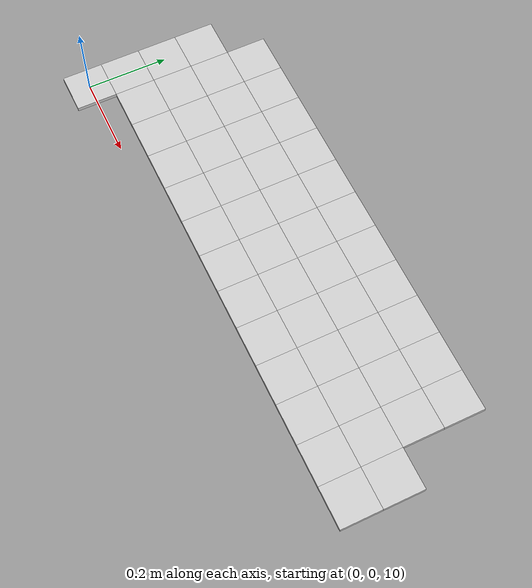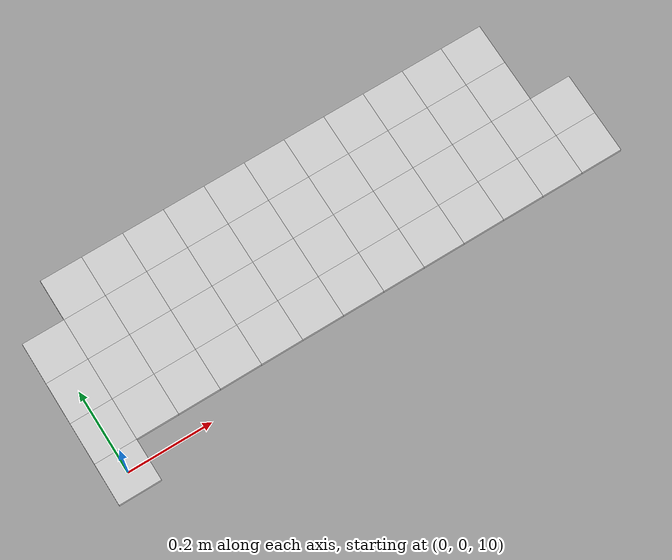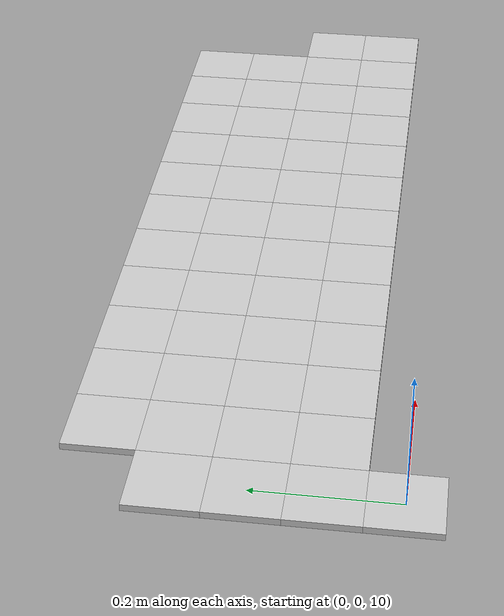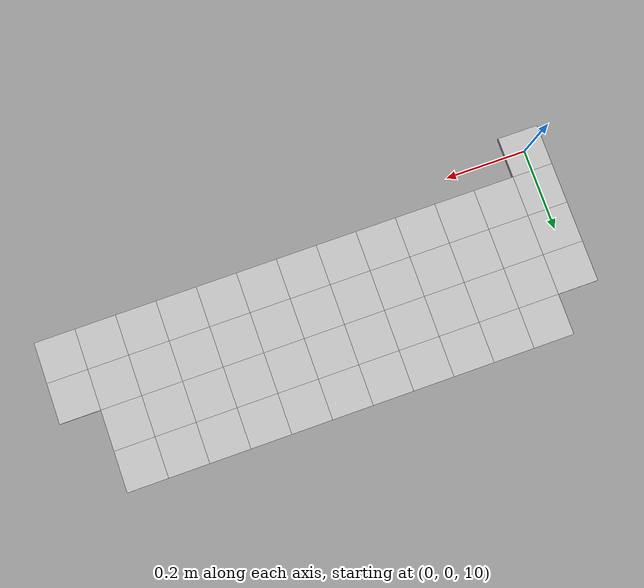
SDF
<?xml version="1.0" ?>
<sdf version="1.6">
  <world name="blanket_physics">

      <physics name="1ms" type="ignored">
        <max_step_size>0.01</max_step_size>
        <real_time_factor>1.0</real_time_factor>
        </physics>
        <plugin
          filename="ignition-gazebo-physics-system"
          name="ignition::gazebo::systems::Physics">
        </plugin>
        <plugin
          filename="ignition-gazebo-user-commands-system"
          name="ignition::gazebo::systems::UserCommands">
        </plugin>

    <plugin
      filename="libignition-gazebo-physics-system.so"
      name="ignition::gazebo::systems::Physics">
    </plugin>
    <plugin
      filename="libignition-gazebo-user-commands-system.so"
      name="ignition::gazebo::systems::UserCommands">
    </plugin>

    <plugin
      filename="libignition-gazebo-scene-broadcaster-system.so"
      name="ignition::gazebo::systems::SceneBroadcaster">
    </plugin>
            <gui fullscreen="0">

            <!-- 3D scene -->
            <plugin filename="GzScene3D" name="3D View">
                <ignition-gui>
                <title>3D View</title>
                <property type="bool" key="showTitleBar">false</property>
                <property type="string" key="state">docked</property>
                </ignition-gui>

                <engine>ogre2</engine>
                <scene>scene</scene>
                <ambient_light>0.4 0.4 0.4</ambient_light>
                <background_color>0.8 0.8 0.8</background_color>
            </plugin>

      <!-- World control -->
      <plugin filename="WorldControl" name="World control">
        <ignition-gui>
          <title>World control</title>
          <property type="bool" key="showTitleBar">false</property>
          <property type="bool" key="resizable">false</property>
          <property type="double" key="height">72</property>
          <property type="double" key="width">121</property>
          <property type="double" key="z">1</property>

          <property type="string" key="state">floating</property>
          <anchors target="3D View">
            <line own="left" target="left"/>
            <line own="bottom" target="bottom"/>
          </anchors>
        </ignition-gui>

        <play_pause>true</play_pause>
        <step>true</step>
        <start_paused>false</start_paused>
        <service>/world/shapes/control</service>
        <stats_topic>/world/shapes/stats</stats_topic>

      </plugin>

      <!-- World statistics -->
      <plugin filename="WorldStats" name="World stats">
        <ignition-gui>
          <title>World stats</title>
          <property type="bool" key="showTitleBar">false</property>
          <property type="bool" key="resizable">false</property>
          <property type="double" key="height">110</property>
          <property type="double" key="width">290</property>
          <property type="double" key="z">1</property>

          <property type="string" key="state">floating</property>
          <anchors target="3D View">
            <line own="right" target="right"/>
            <line own="bottom" target="bottom"/>
          </anchors>
        </ignition-gui>

        <sim_time>true</sim_time>
        <real_time>true</real_time>
        <real_time_factor>true</real_time_factor>
        <iterations>true</iterations>
        <topic>/world/shapes/stats</topic>
      </plugin>

                            <!-- Entity tree -->
            <plugin filename="EntityTree" name="Entity tree">
            </plugin>
    </gui>

    <light type="directional" name="sun">
      <cast_shadows>true</cast_shadows>
      <pose>0 0 10 0 0 0</pose>
      <diffuse>1.0 1.0 1.0 1</diffuse>
      <specular>0.2 0.2 0.2 1</specular>
      <attenuation>
        <range>1000</range>
        <constant>0.1</constant>
        <linear>0.001</linear>
        <quadratic>0.0001</quadratic>
      </attenuation>
      <direction>-0.5 0.1 -0.9</direction>
    </light>

      <model name="ground_plane">
            <static>true</static>
            <link name="link">
                <collision name="collision">
                <geometry>
                    <plane>
                    <normal>0 0 1</normal>
                    </plane>
                </geometry>
                </collision>
                <visual name="visual">
                <geometry>
                    <plane>
                    <normal>0 0 1</normal>
                    <size>100 100</size>
                    </plane>
                </geometry>
                <material>
                    <ambient>0.8 0.8 0.8 1</ambient>
                    <diffuse>0.8 0.8 0.8 1</diffuse>
                    <specular>0.8 0.8 0.8 1</specular>
                </material>
                </visual>
            </link>
      </model>

		<include>
		<name>piece_ 0 </name>
		<pose> 0.0 0.0  10 0 0 0</pose>
		<uri>model://blanket.sdf</uri>
		</include>

		<include>
		<name>piece_ 1 </name>
		<pose> 0.0 0.1  10 0 0 0</pose>
		<uri>model://blanket.sdf</uri>
		</include>

		<include>
		<name>piece_ 2 </name>
		<pose> 0.0 0.2  10 0 0 0</pose>
		<uri>model://blanket.sdf</uri>
		</include>

		<include>
		<name>piece_ 3 </name>
		<pose> 0.0 0.30000000000000004  10 0 0 0</pose>
		<uri>model://blanket.sdf</uri>
		</include>

		<include>
		<name>piece_ 4 </name>
		<pose> 0.1 0.1  10 0 0 0</pose>
		<uri>model://blanket.sdf</uri>
		</include>

		<include>
		<name>piece_ 5 </name>
		<pose> 0.1 0.2  10 0 0 0</pose>
		<uri>model://blanket.sdf</uri>
		</include>

		<include>
		<name>piece_ 6 </name>
		<pose> 0.1 0.30000000000000004  10 0 0 0</pose>
		<uri>model://blanket.sdf</uri>
		</include>

		<include>
		<name>piece_ 7 </name>
		<pose> 0.1 0.4  10 0 0 0</pose>
		<uri>model://blanket.sdf</uri>
		</include>

		<include>
		<name>piece_ 8 </name>
		<pose> 0.2 0.1  10 0 0 0</pose>
		<uri>model://blanket.sdf</uri>
		</include>

		<include>
		<name>piece_ 9 </name>
		<pose> 0.2 0.2  10 0 0 0</pose>
		<uri>model://blanket.sdf</uri>
		</include>

		<include>
		<name>piece_ 10 </name>
		<pose> 0.2 0.30000000000000004  10 0 0 0</pose>
		<uri>model://blanket.sdf</uri>
		</include>

		<include>
		<name>piece_ 11 </name>
		<pose> 0.2 0.4  10 0 0 0</pose>
		<uri>model://blanket.sdf</uri>
		</include>

		<include>
		<name>piece_ 12 </name>
		<pose> 0.30000000000000004 0.1  10 0 0 0</pose>
		<uri>model://blanket.sdf</uri>
		</include>

		<include>
		<name>piece_ 13 </name>
		<pose> 0.30000000000000004 0.2  10 0 0 0</pose>
		<uri>model://blanket.sdf</uri>
		</include>

		<include>
		<name>piece_ 14 </name>
		<pose> 0.30000000000000004 0.30000000000000004  10 0 0 0</pose>
		<uri>model://blanket.sdf</uri>
		</include>

		<include>
		<name>piece_ 15 </name>
		<pose> 0.30000000000000004 0.4  10 0 0 0</pose>
		<uri>model://blanket.sdf</uri>
		</include>

		<include>
		<name>piece_ 16 </name>
		<pose> 0.4 0.1  10 0 0 0</pose>
		<uri>model://blanket.sdf</uri>
		</include>

		<include>
		<name>piece_ 17 </name>
		<pose> 0.4 0.2  10 0 0 0</pose>
		<uri>model://blanket.sdf</uri>
		</include>

		<include>
		<name>piece_ 18 </name>
		<pose> 0.4 0.30000000000000004  10 0 0 0</pose>
		<uri>model://blanket.sdf</uri>
		</include>

		<include>
		<name>piece_ 19 </name>
		<pose> 0.4 0.4  10 0 0 0</pose>
		<uri>model://blanket.sdf</uri>
		</include>

		<include>
		<name>piece_ 20 </name>
		<pose> 0.5 0.1  10 0 0 0</pose>
		<uri>model://blanket.sdf</uri>
		</include>

		<include>
		<name>piece_ 21 </name>
		<pose> 0.5 0.2  10 0 0 0</pose>
		<uri>model://blanket.sdf</uri>
		</include>

		<include>
		<name>piece_ 22 </name>
		<pose> 0.5 0.30000000000000004  10 0 0 0</pose>
		<uri>model://blanket.sdf</uri>
		</include>

		<include>
		<name>piece_ 23 </name>
		<pose> 0.5 0.4  10 0 0 0</pose>
		<uri>model://blanket.sdf</uri>
		</include>

		<include>
		<name>piece_ 24 </name>
		<pose> 0.6 0.1  10 0 0 0</pose>
		<uri>model://blanket.sdf</uri>
		</include>

		<include>
		<name>piece_ 25 </name>
		<pose> 0.6 0.2  10 0 0 0</pose>
		<uri>model://blanket.sdf</uri>
		</include>

		<include>
		<name>piece_ 26 </name>
		<pose> 0.6 0.30000000000000004  10 0 0 0</pose>
		<uri>model://blanket.sdf</uri>
		</include>

		<include>
		<name>piece_ 27 </name>
		<pose> 0.6 0.4  10 0 0 0</pose>
		<uri>model://blanket.sdf</uri>
		</include>

		<include>
		<name>piece_ 28 </name>
		<pose> 0.7 0.1  10 0 0 0</pose>
		<uri>model://blanket.sdf</uri>
		</include>

		<include>
		<name>piece_ 29 </name>
		<pose> 0.7 0.2  10 0 0 0</pose>
		<uri>model://blanket.sdf</uri>
		</include>

		<include>
		<name>piece_ 30 </name>
		<pose> 0.7 0.30000000000000004  10 0 0 0</pose>
		<uri>model://blanket.sdf</uri>
		</include>

		<include>
		<name>piece_ 31 </name>
		<pose> 0.7 0.4  10 0 0 0</pose>
		<uri>model://blanket.sdf</uri>
		</include>

		<include>
		<name>piece_ 32 </name>
		<pose> 0.7999999999999999 0.1  10 0 0 0</pose>
		<uri>model://blanket.sdf</uri>
		</include>

		<include>
		<name>piece_ 33 </name>
		<pose> 0.7999999999999999 0.2  10 0 0 0</pose>
		<uri>model://blanket.sdf</uri>
		</include>

		<include>
		<name>piece_ 34 </name>
		<pose> 0.7999999999999999 0.30000000000000004  10 0 0 0</pose>
		<uri>model://blanket.sdf</uri>
		</include>

		<include>
		<name>piece_ 35 </name>
		<pose> 0.7999999999999999 0.4  10 0 0 0</pose>
		<uri>model://blanket.sdf</uri>
		</include>

		<include>
		<name>piece_ 36 </name>
		<pose> 0.8999999999999999 0.1  10 0 0 0</pose>
		<uri>model://blanket.sdf</uri>
		</include>

		<include>
		<name>piece_ 37 </name>
		<pose> 0.8999999999999999 0.2  10 0 0 0</pose>
		<uri>model://blanket.sdf</uri>
		</include>

		<include>
		<name>piece_ 38 </name>
		<pose> 0.8999999999999999 0.30000000000000004  10 0 0 0</pose>
		<uri>model://blanket.sdf</uri>
		</include>

		<include>
		<name>piece_ 39 </name>
		<pose> 0.8999999999999999 0.4  10 0 0 0</pose>
		<uri>model://blanket.sdf</uri>
		</include>

		<include>
		<name>piece_ 40 </name>
		<pose> 0.9999999999999999 0.1  10 0 0 0</pose>
		<uri>model://blanket.sdf</uri>
		</include>

		<include>
		<name>piece_ 41 </name>
		<pose> 0.9999999999999999 0.2  10 0 0 0</pose>
		<uri>model://blanket.sdf</uri>
		</include>

		<include>
		<name>piece_ 42 </name>
		<pose> 0.9999999999999999 0.30000000000000004  10 0 0 0</pose>
		<uri>model://blanket.sdf</uri>
		</include>

		<include>
		<name>piece_ 43 </name>
		<pose> 0.9999999999999999 0.4  10 0 0 0</pose>
		<uri>model://blanket.sdf</uri>
		</include>

		<include>
		<name>piece_ 44 </name>
		<pose> 1.0999999999999999 0.1  10 0 0 0</pose>
		<uri>model://blanket.sdf</uri>
		</include>

		<include>
		<name>piece_ 45 </name>
		<pose> 1.0999999999999999 0.2  10 0 0 0</pose>
		<uri>model://blanket.sdf</uri>
		</include>

		<include>
		<name>piece_ 46 </name>
		<pose> 1.0999999999999999 0.30000000000000004  10 0 0 0</pose>
		<uri>model://blanket.sdf</uri>
		</include>

		<include>
		<name>piece_ 47 </name>
		<pose> 1.0999999999999999 0.4  10 0 0 0</pose>
		<uri>model://blanket.sdf</uri>
		</include>

		<include>
		<name>piece_ 48 </name>
		<pose> 1.2 0.1  10 0 0 0</pose>
		<uri>model://blanket.sdf</uri>
		</include>

		<include>
		<name>piece_ 49 </name>
		<pose> 1.2 0.2  10 0 0 0</pose>
		<uri>model://blanket.sdf</uri>
		</include>

		<joint name='plate_ 0 ' type='revolute'>
		<pose relative_to='piece_ 0 '/>
		<parent>piece_ 0 </parent>
		<child>piece_ 1 </child>
		<axis>
		<limit>
		<lower>-1.79769e+308</lower>
		<upper>1.79769e+308</upper>
		</limit>
		</axis>
		</joint>
		<joint name='plate_ 1 ' type='revolute'>
		<pose relative_to='piece_ 1 '/>
		<parent>piece_ 1 </parent>
		<child>piece_ 2 </child>
		<axis>
		<limit>
		<lower>-1.79769e+308</lower>
		<upper>1.79769e+308</upper>
		</limit>
		</axis>
		</joint>
		<joint name='plate_ 2 ' type='revolute'>
		<pose relative_to='piece_ 2 '/>
		<parent>piece_ 2 </parent>
		<child>piece_ 3 </child>
		<axis>
		<limit>
		<lower>-1.79769e+308</lower>
		<upper>1.79769e+308</upper>
		</limit>
		</axis>
		</joint>
		<joint name='plate_ 3 ' type='revolute'>
		<pose relative_to='piece_ 3 '/>
		<parent>piece_ 3 </parent>
		<child>piece_ 4 </child>
		<axis>
		<limit>
		<lower>-1.79769e+308</lower>
		<upper>1.79769e+308</upper>
		</limit>
		</axis>
		</joint>
		<joint name='plate_ 4 ' type='revolute'>
		<pose relative_to='piece_ 4 '/>
		<parent>piece_ 4 </parent>
		<child>piece_ 5 </child>
		<axis>
		<limit>
		<lower>-1.79769e+308</lower>
		<upper>1.79769e+308</upper>
		</limit>
		</axis>
		</joint>
		<joint name='plate_ 5 ' type='revolute'>
		<pose relative_to='piece_ 5 '/>
		<parent>piece_ 5 </parent>
		<child>piece_ 6 </child>
		<axis>
		<limit>
		<lower>-1.79769e+308</lower>
		<upper>1.79769e+308</upper>
		</limit>
		</axis>
		</joint>
		<joint name='plate_ 6 ' type='revolute'>
		<pose relative_to='piece_ 6 '/>
		<parent>piece_ 6 </parent>
		<child>piece_ 7 </child>
		<axis>
		<limit>
		<lower>-1.79769e+308</lower>
		<upper>1.79769e+308</upper>
		</limit>
		</axis>
		</joint>
		<joint name='plate_ 7 ' type='revolute'>
		<pose relative_to='piece_ 7 '/>
		<parent>piece_ 7 </parent>
		<child>piece_ 8 </child>
		<axis>
		<limit>
		<lower>-1.79769e+308</lower>
		<upper>1.79769e+308</upper>
		</limit>
		</axis>
		</joint>
		<joint name='plate_ 8 ' type='revolute'>
		<pose relative_to='piece_ 8 '/>
		<parent>piece_ 8 </parent>
		<child>piece_ 9 </child>
		<axis>
		<limit>
		<lower>-1.79769e+308</lower>
		<upper>1.79769e+308</upper>
		</limit>
		</axis>
		</joint>
		<joint name='plate_ 9 ' type='revolute'>
		<pose relative_to='piece_ 9 '/>
		<parent>piece_ 9 </parent>
		<child>piece_ 10 </child>
		<axis>
		<limit>
		<lower>-1.79769e+308</lower>
		<upper>1.79769e+308</upper>
		</limit>
		</axis>
		</joint>
		<joint name='plate_ 10 ' type='revolute'>
		<pose relative_to='piece_ 10 '/>
		<parent>piece_ 10 </parent>
		<child>piece_ 11 </child>
		<axis>
		<limit>
		<lower>-1.79769e+308</lower>
		<upper>1.79769e+308</upper>
		</limit>
		</axis>
		</joint>
		<joint name='plate_ 11 ' type='revolute'>
		<pose relative_to='piece_ 11 '/>
		<parent>piece_ 11 </parent>
		<child>piece_ 12 </child>
		<axis>
		<limit>
		<lower>-1.79769e+308</lower>
		<upper>1.79769e+308</upper>
		</limit>
		</axis>
		</joint>
		<joint name='plate_ 12 ' type='revolute'>
		<pose relative_to='piece_ 12 '/>
		<parent>piece_ 12 </parent>
		<child>piece_ 13 </child>
		<axis>
		<limit>
		<lower>-1.79769e+308</lower>
		<upper>1.79769e+308</upper>
		</limit>
		</axis>
		</joint>
		<joint name='plate_ 13 ' type='revolute'>
		<pose relative_to='piece_ 13 '/>
		<parent>piece_ 13 </parent>
		<child>piece_ 14 </child>
		<axis>
		<limit>
		<lower>-1.79769e+308</lower>
		<upper>1.79769e+308</upper>
		</limit>
		</axis>
		</joint>
		<joint name='plate_ 14 ' type='revolute'>
		<pose relative_to='piece_ 14 '/>
		<parent>piece_ 14 </parent>
		<child>piece_ 15 </child>
		<axis>
		<limit>
		<lower>-1.79769e+308</lower>
		<upper>1.79769e+308</upper>
		</limit>
		</axis>
		</joint>
		<joint name='plate_ 15 ' type='revolute'>
		<pose relative_to='piece_ 15 '/>
		<parent>piece_ 15 </parent>
		<child>piece_ 16 </child>
		<axis>
		<limit>
		<lower>-1.79769e+308</lower>
		<upper>1.79769e+308</upper>
		</limit>
		</axis>
		</joint>
		<joint name='plate_ 16 ' type='revolute'>
		<pose relative_to='piece_ 16 '/>
		<parent>piece_ 16 </parent>
		<child>piece_ 17 </child>
		<axis>
		<limit>
		<lower>-1.79769e+308</lower>
		<upper>1.79769e+308</upper>
		</limit>
		</axis>
		</joint>
		<joint name='plate_ 17 ' type='revolute'>
		<pose relative_to='piece_ 17 '/>
		<parent>piece_ 17 </parent>
		<child>piece_ 18 </child>
		<axis>
		<limit>
		<lower>-1.79769e+308</lower>
		<upper>1.79769e+308</upper>
		</limit>
		</axis>
		</joint>
		<joint name='plate_ 18 ' type='revolute'>
		<pose relative_to='piece_ 18 '/>
		<parent>piece_ 18 </parent>
		<child>piece_ 19 </child>
		<axis>
		<limit>
		<lower>-1.79769e+308</lower>
		<upper>1.79769e+308</upper>
		</limit>
		</axis>
		</joint>
		<joint name='plate_ 19 ' type='revolute'>
		<pose relative_to='piece_ 19 '/>
		<parent>piece_ 19 </parent>
		<child>piece_ 20 </child>
		<axis>
		<limit>
		<lower>-1.79769e+308</lower>
		<upper>1.79769e+308</upper>
		</limit>
		</axis>
		</joint>
		<joint name='plate_ 20 ' type='revolute'>
		<pose relative_to='piece_ 20 '/>
		<parent>piece_ 20 </parent>
		<child>piece_ 21 </child>
		<axis>
		<limit>
		<lower>-1.79769e+308</lower>
		<upper>1.79769e+308</upper>
		</limit>
		</axis>
		</joint>
		<joint name='plate_ 21 ' type='revolute'>
		<pose relative_to='piece_ 21 '/>
		<parent>piece_ 21 </parent>
		<child>piece_ 22 </child>
		<axis>
		<limit>
		<lower>-1.79769e+308</lower>
		<upper>1.79769e+308</upper>
		</limit>
		</axis>
		</joint>
		<joint name='plate_ 22 ' type='revolute'>
		<pose relative_to='piece_ 22 '/>
		<parent>piece_ 22 </parent>
		<child>piece_ 23 </child>
		<axis>
		<limit>
		<lower>-1.79769e+308</lower>
		<upper>1.79769e+308</upper>
		</limit>
		</axis>
		</joint>
		<joint name='plate_ 23 ' type='revolute'>
		<pose relative_to='piece_ 23 '/>
		<parent>piece_ 23 </parent>
		<child>piece_ 24 </child>
		<axis>
		<limit>
		<lower>-1.79769e+308</lower>
		<upper>1.79769e+308</upper>
		</limit>
		</axis>
		</joint>
		<joint name='plate_ 24 ' type='revolute'>
		<pose relative_to='piece_ 24 '/>
		<parent>piece_ 24 </parent>
		<child>piece_ 25 </child>
		<axis>
		<limit>
		<lower>-1.79769e+308</lower>
		<upper>1.79769e+308</upper>
		</limit>
		</axis>
		</joint>
		<joint name='plate_ 25 ' type='revolute'>
		<pose relative_to='piece_ 25 '/>
		<parent>piece_ 25 </parent>
		<child>piece_ 26 </child>
		<axis>
		<limit>
		<lower>-1.79769e+308</lower>
		<upper>1.79769e+308</upper>
		</limit>
		</axis>
		</joint>
		<joint name='plate_ 26 ' type='revolute'>
		<pose relative_to='piece_ 26 '/>
		<parent>piece_ 26 </parent>
		<child>piece_ 27 </child>
		<axis>
		<limit>
		<lower>-1.79769e+308</lower>
		<upper>1.79769e+308</upper>
		</limit>
		</axis>
		</joint>
		<joint name='plate_ 27 ' type='revolute'>
		<pose relative_to='piece_ 27 '/>
		<parent>piece_ 27 </parent>
		<child>piece_ 28 </child>
		<axis>
		<limit>
		<lower>-1.79769e+308</lower>
		<upper>1.79769e+308</upper>
		</limit>
		</axis>
		</joint>
		<joint name='plate_ 28 ' type='revolute'>
		<pose relative_to='piece_ 28 '/>
		<parent>piece_ 28 </parent>
		<child>piece_ 29 </child>
		<axis>
		<limit>
		<lower>-1.79769e+308</lower>
		<upper>1.79769e+308</upper>
		</limit>
		</axis>
		</joint>
		<joint name='plate_ 29 ' type='revolute'>
		<pose relative_to='piece_ 29 '/>
		<parent>piece_ 29 </parent>
		<child>piece_ 30 </child>
		<axis>
		<limit>
		<lower>-1.79769e+308</lower>
		<upper>1.79769e+308</upper>
		</limit>
		</axis>
		</joint>
		<joint name='plate_ 30 ' type='revolute'>
		<pose relative_to='piece_ 30 '/>
		<parent>piece_ 30 </parent>
		<child>piece_ 31 </child>
		<axis>
		<limit>
		<lower>-1.79769e+308</lower>
		<upper>1.79769e+308</upper>
		</limit>
		</axis>
		</joint>
		<joint name='plate_ 31 ' type='revolute'>
		<pose relative_to='piece_ 31 '/>
		<parent>piece_ 31 </parent>
		<child>piece_ 32 </child>
		<axis>
		<limit>
		<lower>-1.79769e+308</lower>
		<upper>1.79769e+308</upper>
		</limit>
		</axis>
		</joint>
		<joint name='plate_ 32 ' type='revolute'>
		<pose relative_to='piece_ 32 '/>
		<parent>piece_ 32 </parent>
		<child>piece_ 33 </child>
		<axis>
		<limit>
		<lower>-1.79769e+308</lower>
		<upper>1.79769e+308</upper>
		</limit>
		</axis>
		</joint>
		<joint name='plate_ 33 ' type='revolute'>
		<pose relative_to='piece_ 33 '/>
		<parent>piece_ 33 </parent>
		<child>piece_ 34 </child>
		<axis>
		<limit>
		<lower>-1.79769e+308</lower>
		<upper>1.79769e+308</upper>
		</limit>
		</axis>
		</joint>
		<joint name='plate_ 34 ' type='revolute'>
		<pose relative_to='piece_ 34 '/>
		<parent>piece_ 34 </parent>
		<child>piece_ 35 </child>
		<axis>
		<limit>
		<lower>-1.79769e+308</lower>
		<upper>1.79769e+308</upper>
		</limit>
		</axis>
		</joint>
		<joint name='plate_ 35 ' type='revolute'>
		<pose relative_to='piece_ 35 '/>
		<parent>piece_ 35 </parent>
		<child>piece_ 36 </child>
		<axis>
		<limit>
		<lower>-1.79769e+308</lower>
		<upper>1.79769e+308</upper>
		</limit>
		</axis>
		</joint>
		<joint name='plate_ 36 ' type='revolute'>
		<pose relative_to='piece_ 36 '/>
		<parent>piece_ 36 </parent>
		<child>piece_ 37 </child>
		<axis>
		<limit>
		<lower>-1.79769e+308</lower>
		<upper>1.79769e+308</upper>
		</limit>
		</axis>
		</joint>
		<joint name='plate_ 37 ' type='revolute'>
		<pose relative_to='piece_ 37 '/>
		<parent>piece_ 37 </parent>
		<child>piece_ 38 </child>
		<axis>
		<limit>
		<lower>-1.79769e+308</lower>
		<upper>1.79769e+308</upper>
		</limit>
		</axis>
		</joint>
		<joint name='plate_ 38 ' type='revolute'>
		<pose relative_to='piece_ 38 '/>
		<parent>piece_ 38 </parent>
		<child>piece_ 39 </child>
		<axis>
		<limit>
		<lower>-1.79769e+308</lower>
		<upper>1.79769e+308</upper>
		</limit>
		</axis>
		</joint>
		<joint name='plate_ 39 ' type='revolute'>
		<pose relative_to='piece_ 39 '/>
		<parent>piece_ 39 </parent>
		<child>piece_ 40 </child>
		<axis>
		<limit>
		<lower>-1.79769e+308</lower>
		<upper>1.79769e+308</upper>
		</limit>
		</axis>
		</joint>
		<joint name='plate_ 40 ' type='revolute'>
		<pose relative_to='piece_ 40 '/>
		<parent>piece_ 40 </parent>
		<child>piece_ 41 </child>
		<axis>
		<limit>
		<lower>-1.79769e+308</lower>
		<upper>1.79769e+308</upper>
		</limit>
		</axis>
		</joint>
		<joint name='plate_ 41 ' type='revolute'>
		<pose relative_to='piece_ 41 '/>
		<parent>piece_ 41 </parent>
		<child>piece_ 42 </child>
		<axis>
		<limit>
		<lower>-1.79769e+308</lower>
		<upper>1.79769e+308</upper>
		</limit>
		</axis>
		</joint>
		<joint name='plate_ 42 ' type='revolute'>
		<pose relative_to='piece_ 42 '/>
		<parent>piece_ 42 </parent>
		<child>piece_ 43 </child>
		<axis>
		<limit>
		<lower>-1.79769e+308</lower>
		<upper>1.79769e+308</upper>
		</limit>
		</axis>
		</joint>
		<joint name='plate_ 43 ' type='revolute'>
		<pose relative_to='piece_ 43 '/>
		<parent>piece_ 43 </parent>
		<child>piece_ 44 </child>
		<axis>
		<limit>
		<lower>-1.79769e+308</lower>
		<upper>1.79769e+308</upper>
		</limit>
		</axis>
		</joint>
		<joint name='plate_ 44 ' type='revolute'>
		<pose relative_to='piece_ 44 '/>
		<parent>piece_ 44 </parent>
		<child>piece_ 45 </child>
		<axis>
		<limit>
		<lower>-1.79769e+308</lower>
		<upper>1.79769e+308</upper>
		</limit>
		</axis>
		</joint>
		<joint name='plate_ 45 ' type='revolute'>
		<pose relative_to='piece_ 45 '/>
		<parent>piece_ 45 </parent>
		<child>piece_ 46 </child>
		<axis>
		<limit>
		<lower>-1.79769e+308</lower>
		<upper>1.79769e+308</upper>
		</limit>
		</axis>
		</joint>
		<joint name='plate_ 46 ' type='revolute'>
		<pose relative_to='piece_ 46 '/>
		<parent>piece_ 46 </parent>
		<child>piece_ 47 </child>
		<axis>
		<limit>
		<lower>-1.79769e+308</lower>
		<upper>1.79769e+308</upper>
		</limit>
		</axis>
		</joint>
		<joint name='plate_ 47 ' type='revolute'>
		<pose relative_to='piece_ 47 '/>
		<parent>piece_ 47 </parent>
		<child>piece_ 48 </child>
		<axis>
		<limit>
		<lower>-1.79769e+308</lower>
		<upper>1.79769e+308</upper>
		</limit>
		</axis>
		</joint>
		<joint name='plate_ 48 ' type='revolute'>
		<pose relative_to='piece_ 48 '/>
		<parent>piece_ 48 </parent>
		<child>piece_ 49 </child>
		<axis>
		<limit>
		<lower>-1.79769e+308</lower>
		<upper>1.79769e+308</upper>
		</limit>
		</axis>
		</joint>
		<joint name='plate_ 49 ' type='revolute'>
		<pose relative_to='piece_ 49 '/>
		<parent>piece_ 49 </parent>
		<child>piece_ 50 </child>
		<axis>
		<limit>
		<lower>-1.79769e+308</lower>
		<upper>1.79769e+308</upper>
		</limit>
		</axis>
		</joint>

  </world>
</sdf>

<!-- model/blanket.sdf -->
<sdf version="1.9">
        <model name="blanket_piece">
            <pose>0 0 0 0 0 0</pose>
            <link name="piece">
                <inertial>
                    <mass>0.453592</mass>
                    <inertia>
                        <ixx>0.095329</ixx>
                        <ixy>0</ixy>
                        <ixz>0</ixz>
                        <iyy>0.381317</iyy>
                        <iyz>0</iyz>
                        <izz>0.476646</izz>
                    </inertia>
                </inertial>
                <visual name="square">
                    <geometry>
                            <box>
                                <size>0.1 0.1 0.01</size>
                            </box>
                        </geometry>
                    <material>
                        <ambient>0.8 0.8 0.8 1</ambient>
                        <diffuse>0.8 0.8 0.8 1</diffuse>
                        <pbr>
                            <metal>
                              <albedo_map>fur.png</albedo_map>
                              <normal_map>fur.png</normal_map>
                            </metal>
                        </pbr>
                    </material>
                </visual>
                <collision name="blanket_collision">
                    <geometry>
                        <box>
                            <size>0.1 0.1 0.01</size>
                        </box>
                    </geometry>
                </collision>
            </link>
        </model>
</sdf>
